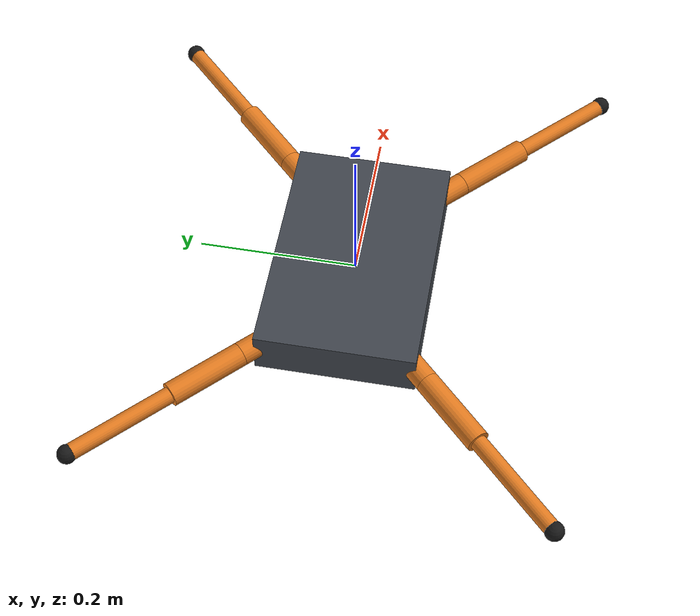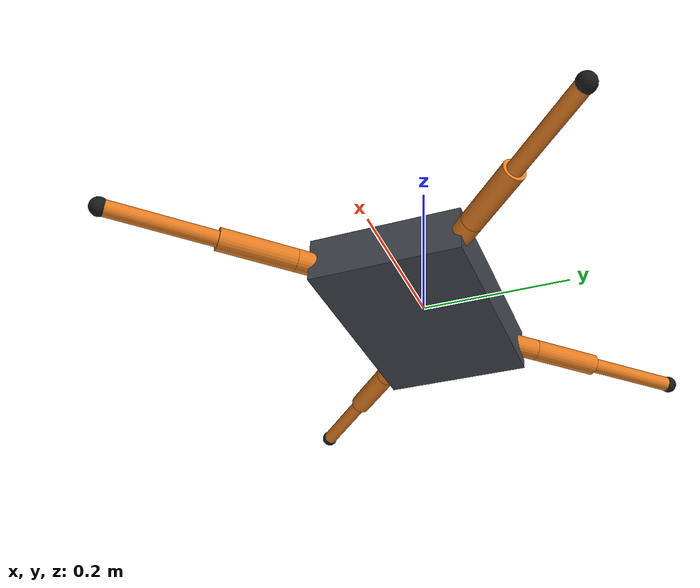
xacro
<?xml version="1.0"?>
<robot name="spider_bot" xmlns:xacro="http://www.ros.org/wiki/xacro">

  <!-- Dimensions. Change them here, and in leg_kinematics.py.        -->
  <xacro:property name="body_length" value="0.30"/>
  <xacro:property name="body_width" value="0.20"/>
  <xacro:property name="body_height" value="0.06"/>
  <xacro:property name="body_mass" value="1.5"/>

  <xacro:property name="coxa_length" value="0.05"/>
  <xacro:property name="femur_length" value="0.10"/>
  <xacro:property name="tibia_length" value="0.14"/>
  <xacro:property name="leg_radius" value="0.015"/>
  <xacro:property name="leg_mass" value="0.10"/>

  <!-- Where the legs attach, measured from the centre of the body. -->
  <xacro:property name="mount_x" value="0.12"/>
  <xacro:property name="mount_y" value="0.08"/>

  <!-- Materials (colours in RViz).                                   -->
  <material name="body_grey">
    <color rgba="0.25 0.27 0.30 1.0"/>
  </material>
  <material name="leg_orange">
    <color rgba="0.90 0.49 0.13 1.0"/>
  </material>
  <material name="foot_black">
    <color rgba="0.10 0.10 0.10 1.0"/>
  </material>

  <!-- A reusable inertia block for a box.                            -->
  <!-- Every link that Gazebo simulates needs mass and inertia, or    -->
  <!-- the physics engine will either ignore it or explode.           -->
  <xacro:macro name="box_inertia" params="mass x y z">
    <inertial>
      <mass value="${mass}"/>
      <inertia
        ixx="${mass * (y*y + z*z) / 12.0}" ixy="0.0" ixz="0.0"
        iyy="${mass * (x*x + z*z) / 12.0}" iyz="0.0"
        izz="${mass * (x*x + y*y) / 12.0}"/>
    </inertial>
  </xacro:macro>

  <!-- One leg: coxa -> femur -> tibia -> foot.                       -->
  <!-- The axis of the femur and tibia joints is "0 -1 0" on purpose. -->
  <!-- With that axis a POSITIVE joint angle LIFTS the foot, which is  -->
  <!-- the convention leg_kinematics.py is written in. Flip it and     -->
  <!-- every leg bends the wrong way.                                  -->
  <xacro:macro name="leg" params="name x y yaw">

    <!-- coxa: rotates the whole leg about the vertical axis -->
    <joint name="${name}_coxa_joint" type="revolute">
      <parent link="base_link"/>
      <child link="${name}_coxa"/>
      <origin xyz="${x} ${y} 0" rpy="0 0 ${yaw}"/>
      <axis xyz="0 0 1"/>
      <limit lower="${-pi/4}" upper="${pi/4}" effort="10.0" velocity="6.0"/>
      <dynamics damping="0.05" friction="0.01"/>
    </joint>

    <link name="${name}_coxa">
      <visual>
        <origin xyz="${coxa_length/2} 0 0" rpy="0 ${pi/2} 0"/>
        <geometry>
          <cylinder radius="${leg_radius}" length="${coxa_length}"/>
        </geometry>
        <material name="leg_orange"/>
      </visual>
      <collision>
        <origin xyz="${coxa_length/2} 0 0" rpy="0 ${pi/2} 0"/>
        <geometry>
          <cylinder radius="${leg_radius}" length="${coxa_length}"/>
        </geometry>
      </collision>
      <xacro:box_inertia mass="${leg_mass}" x="${coxa_length}"
                         y="${2*leg_radius}" z="${2*leg_radius}"/>
    </link>

    <!-- femur: the upper leg segment -->
    <joint name="${name}_femur_joint" type="revolute">
      <parent link="${name}_coxa"/>
      <child link="${name}_femur"/>
      <origin xyz="${coxa_length} 0 0" rpy="0 0 0"/>
      <axis xyz="0 -1 0"/>
      <limit lower="${-pi/2}" upper="${pi/2}" effort="20.0" velocity="6.0"/>
      <dynamics damping="0.05" friction="0.01"/>
    </joint>

    <link name="${name}_femur">
      <visual>
        <origin xyz="${femur_length/2} 0 0" rpy="0 ${pi/2} 0"/>
        <geometry>
          <cylinder radius="${leg_radius}" length="${femur_length}"/>
        </geometry>
        <material name="leg_orange"/>
      </visual>
      <collision>
        <origin xyz="${femur_length/2} 0 0" rpy="0 ${pi/2} 0"/>
        <geometry>
          <cylinder radius="${leg_radius}" length="${femur_length}"/>
        </geometry>
      </collision>
      <xacro:box_inertia mass="${leg_mass}" x="${femur_length}"
                         y="${2*leg_radius}" z="${2*leg_radius}"/>
    </link>

    <!-- tibia: the lower leg segment that reaches the ground -->
    <joint name="${name}_tibia_joint" type="revolute">
      <parent link="${name}_femur"/>
      <child link="${name}_tibia"/>
      <origin xyz="${femur_length} 0 0" rpy="0 0 0"/>
      <axis xyz="0 -1 0"/>
      <limit lower="${-2.7}" upper="${0.2}" effort="20.0" velocity="6.0"/>
      <dynamics damping="0.05" friction="0.01"/>
    </joint>

    <link name="${name}_tibia">
      <visual>
        <origin xyz="${tibia_length/2} 0 0" rpy="0 ${pi/2} 0"/>
        <geometry>
          <cylinder radius="${leg_radius*0.7}" length="${tibia_length}"/>
        </geometry>
        <material name="leg_orange"/>
      </visual>
      <collision>
        <origin xyz="${tibia_length/2} 0 0" rpy="0 ${pi/2} 0"/>
        <geometry>
          <cylinder radius="${leg_radius*0.7}" length="${tibia_length}"/>
        </geometry>
      </collision>
      <xacro:box_inertia mass="${leg_mass*0.6}" x="${tibia_length}"
                         y="${2*leg_radius}" z="${2*leg_radius}"/>
    </link>

    <!-- foot: a fixed frame at the tip, useful for TF lookups -->
    <joint name="${name}_foot_joint" type="fixed">
      <parent link="${name}_tibia"/>
      <child link="${name}_foot"/>
      <origin xyz="${tibia_length} 0 0" rpy="0 0 0"/>
    </joint>

    <link name="${name}_foot">
      <visual>
        <geometry>
          <sphere radius="${leg_radius*0.8}"/>
        </geometry>
        <material name="foot_black"/>
      </visual>
      <collision>
        <geometry>
          <sphere radius="${leg_radius*0.8}"/>
        </geometry>
      </collision>
      <xacro:box_inertia mass="0.01" x="0.02" y="0.02" z="0.02"/>
    </link>

    <!-- Gazebo needs friction on the feet or the robot skates. -->
    <gazebo reference="${name}_foot">
      <mu1>1.2</mu1>
      <mu2>1.2</mu2>
      <material>Gazebo/Black</material>
    </gazebo>

    <gazebo reference="${name}_coxa">
      <material>Gazebo/Orange</material>
    </gazebo>
    <gazebo reference="${name}_femur">
      <material>Gazebo/Orange</material>
    </gazebo>
    <gazebo reference="${name}_tibia">
      <material>Gazebo/Orange</material>
    </gazebo>

  </xacro:macro>

  <!-- The body.                                                      -->
  <!-- base_link is the frame every other frame hangs off, and the    -->
  <!-- name the rest of the ROS ecosystem expects (lesson 12).        -->
  <link name="base_link">
    <visual>
      <geometry>
        <box size="${body_length} ${body_width} ${body_height}"/>
      </geometry>
      <material name="body_grey"/>
    </visual>
    <collision>
      <geometry>
        <box size="${body_length} ${body_width} ${body_height}"/>
      </geometry>
    </collision>
    <xacro:box_inertia mass="${body_mass}" x="${body_length}"
                       y="${body_width}" z="${body_height}"/>
  </link>

  <gazebo reference="base_link">
    <material>Gazebo/DarkGrey</material>
  </gazebo>

  <!-- The four legs. Splayed 45 degrees out from each corner, so     -->
  <!-- every leg's +x points diagonally away from the body.           -->
  <!-- These yaw values MUST match LEG_MOUNTS in leg_kinematics.py.   -->
  <xacro:leg name="front_left"  x="${mount_x}"  y="${mount_y}"  yaw="${pi/4}"/>
  <xacro:leg name="front_right" x="${mount_x}"  y="${-mount_y}" yaw="${-pi/4}"/>
  <xacro:leg name="rear_left"   x="${-mount_x}" y="${mount_y}"  yaw="${3*pi/4}"/>
  <xacro:leg name="rear_right"  x="${-mount_x}" y="${-mount_y}" yaw="${-3*pi/4}"/>

  <!-- ros2_control (lesson 19).                                      -->
  <!-- This block tells ros2_control which joints it may command and  -->
  <!-- what it can read back. gazebo_ros2_control provides the        -->
  <!-- simulated hardware; on a real robot you would swap in your own -->
  <!-- hardware plugin and nothing above this line would change.      -->
  <xacro:macro name="leg_control" params="name">
    <joint name="${name}_coxa_joint">
      <command_interface name="position">
        <param name="min">${-pi/4}</param>
        <param name="max">${pi/4}</param>
      </command_interface>
      <state_interface name="position"/>
      <state_interface name="velocity"/>
    </joint>
    <joint name="${name}_femur_joint">
      <command_interface name="position">
        <param name="min">${-pi/2}</param>
        <param name="max">${pi/2}</param>
      </command_interface>
      <state_interface name="position"/>
      <state_interface name="velocity"/>
    </joint>
    <joint name="${name}_tibia_joint">
      <command_interface name="position">
        <param name="min">-2.7</param>
        <param name="max">0.2</param>
      </command_interface>
      <state_interface name="position"/>
      <state_interface name="velocity"/>
    </joint>
  </xacro:macro>

  <ros2_control name="SpiderBotHardware" type="system">
    <hardware>
      <plugin>gazebo_ros2_control/GazeboSystem</plugin>
    </hardware>
    <xacro:leg_control name="front_left"/>
    <xacro:leg_control name="front_right"/>
    <xacro:leg_control name="rear_left"/>
    <xacro:leg_control name="rear_right"/>
  </ros2_control>

  <gazebo>
    <plugin filename="libgazebo_ros2_control.so" name="gazebo_ros2_control">
      <parameters>$(find spider_bot)/config/spider_bot_controllers.yaml</parameters>
    </plugin>
  </gazebo>

</robot>
